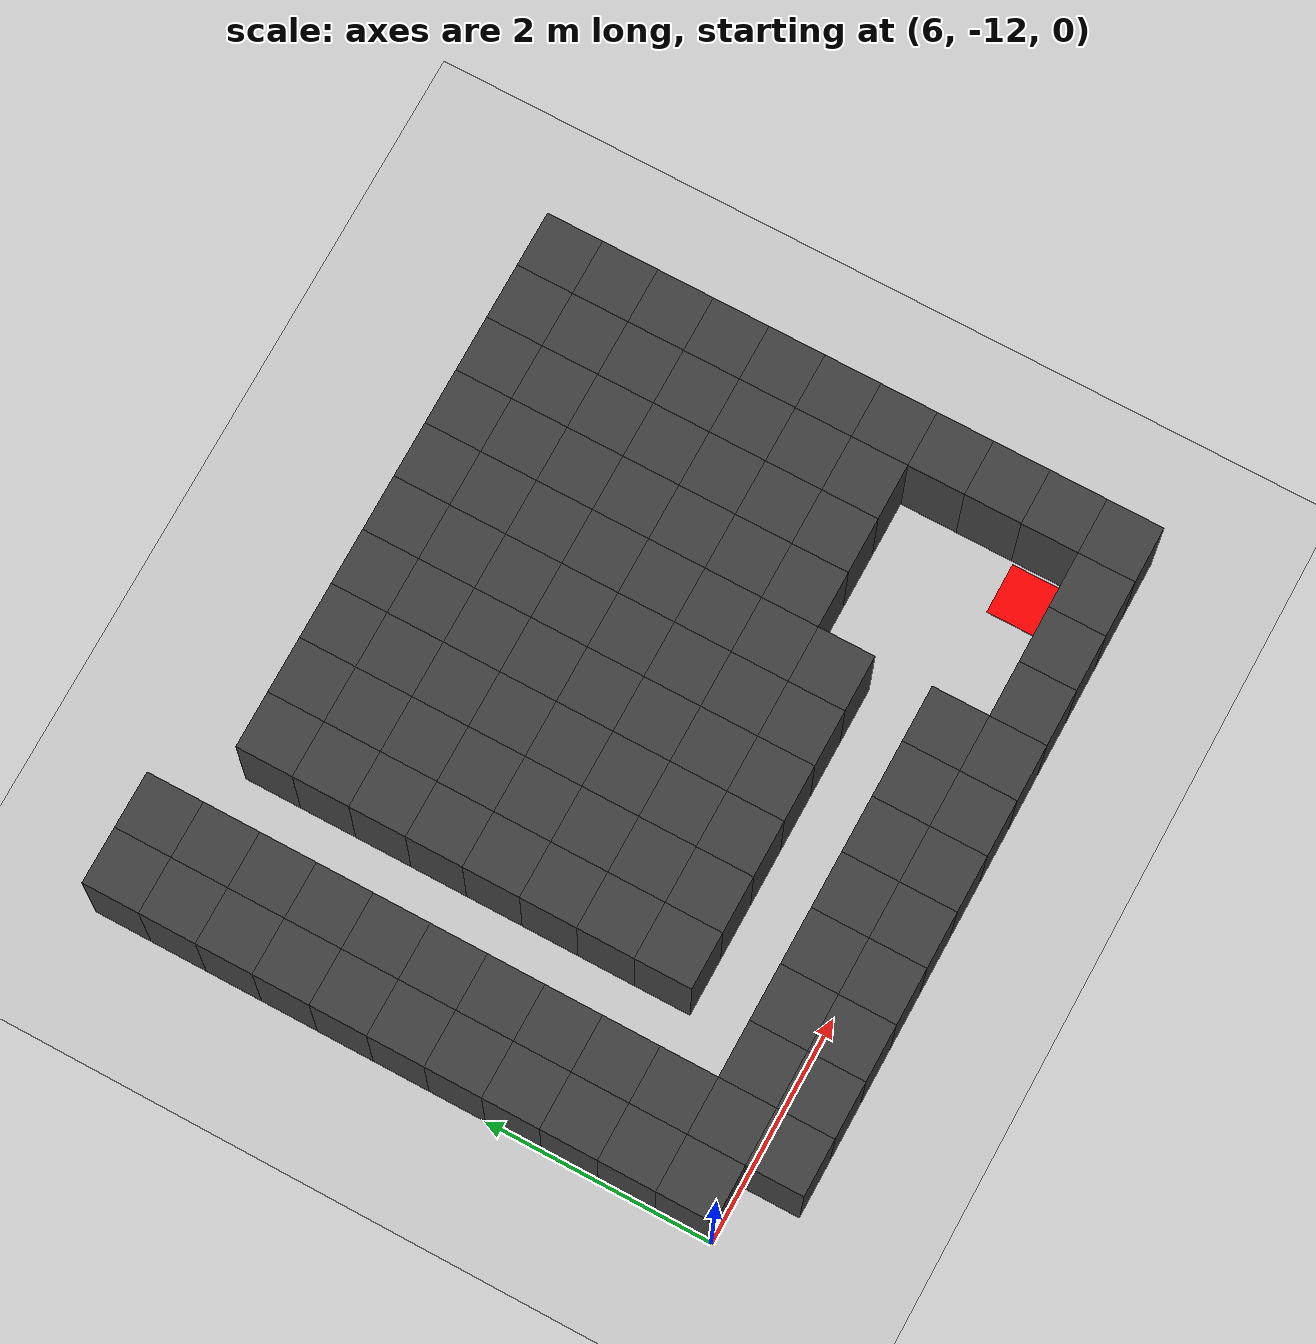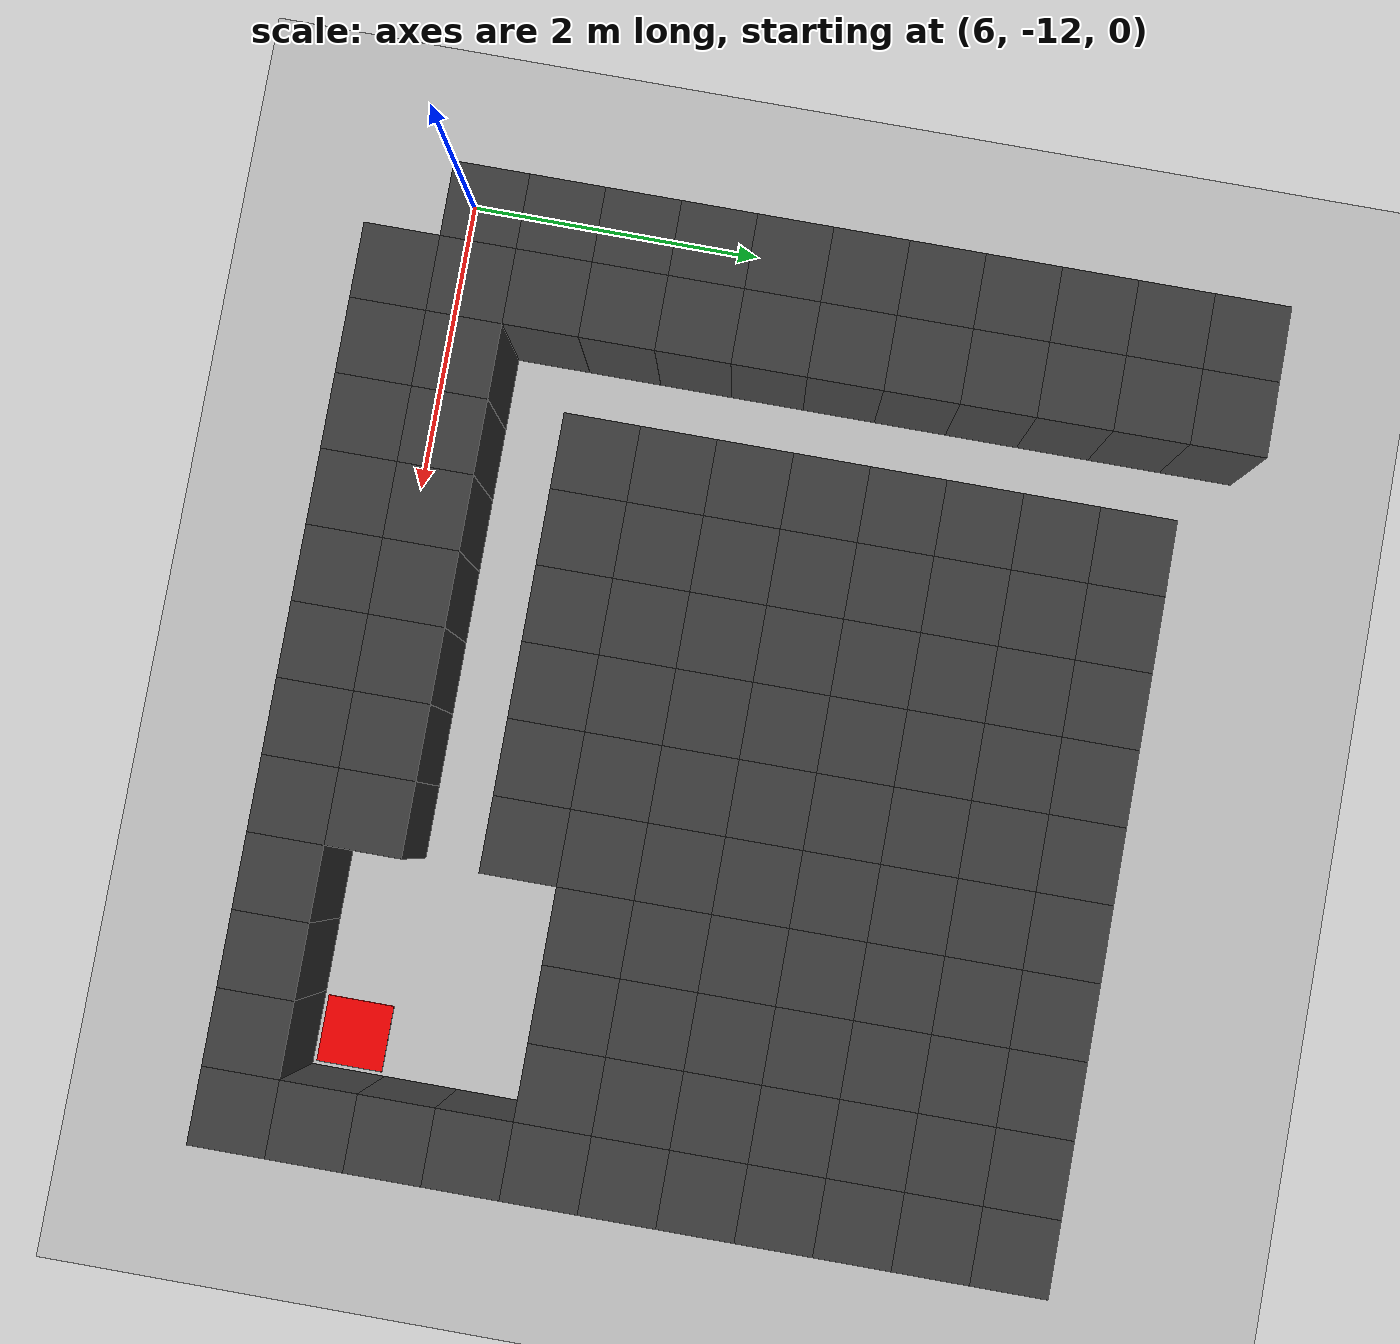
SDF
<sdf version="1.7">
 <world name="map_14888">
  <model name="ground_plane">
   <static>true</static>
   <link name="link">
    <collision name="collision">
     <geometry><plane><normal>0 0 1</normal><size>200 200</size></plane></geometry>
    </collision>
    <visual name="visual">
     <geometry><plane><normal>0 0 1</normal><size>200 200</size></plane></geometry>
     <material><ambient>0.8 0.8 0.8 1</ambient><diffuse>0.8 0.8 0.8 1</diffuse></material>
    </visual>
   </link>
  </model>
  <model name="maze_environment">
   <static>true</static>
   <link name="wall_1394">
    <pose>6.250 -6.750 0.500 0 0 0</pose>
    <collision name="col"><geometry><box><size>0.5 0.5 1.0</size></box></geometry></collision>
    <visual name="vis">
     <geometry><box><size>0.5 0.5 1.0</size></box></geometry>
     <material><ambient>0.15 0.15 0.15 1</ambient><diffuse>0.25 0.25 0.25 1</diffuse></material>
    </visual>
   </link>
   <link name="wall_1395">
    <pose>6.750 -6.750 0.500 0 0 0</pose>
    <collision name="col"><geometry><box><size>0.5 0.5 1.0</size></box></geometry></collision>
    <visual name="vis">
     <geometry><box><size>0.5 0.5 1.0</size></box></geometry>
     <material><ambient>0.15 0.15 0.15 1</ambient><diffuse>0.25 0.25 0.25 1</diffuse></material>
    </visual>
   </link>
   <link name="wall_1424">
    <pose>6.250 -7.250 0.500 0 0 0</pose>
    <collision name="col"><geometry><box><size>0.5 0.5 1.0</size></box></geometry></collision>
    <visual name="vis">
     <geometry><box><size>0.5 0.5 1.0</size></box></geometry>
     <material><ambient>0.15 0.15 0.15 1</ambient><diffuse>0.25 0.25 0.25 1</diffuse></material>
    </visual>
   </link>
   <link name="wall_1425">
    <pose>6.750 -7.250 0.500 0 0 0</pose>
    <collision name="col"><geometry><box><size>0.5 0.5 1.0</size></box></geometry></collision>
    <visual name="vis">
     <geometry><box><size>0.5 0.5 1.0</size></box></geometry>
     <material><ambient>0.15 0.15 0.15 1</ambient><diffuse>0.25 0.25 0.25 1</diffuse></material>
    </visual>
   </link>
   <link name="wall_1426">
    <pose>7.750 -7.250 0.500 0 0 0</pose>
    <collision name="col"><geometry><box><size>0.5 0.5 1.0</size></box></geometry></collision>
    <visual name="vis">
     <geometry><box><size>0.5 0.5 1.0</size></box></geometry>
     <material><ambient>0.15 0.15 0.15 1</ambient><diffuse>0.25 0.25 0.25 1</diffuse></material>
    </visual>
   </link>
   <link name="wall_1427">
    <pose>8.250 -7.250 0.500 0 0 0</pose>
    <collision name="col"><geometry><box><size>0.5 0.5 1.0</size></box></geometry></collision>
    <visual name="vis">
     <geometry><box><size>0.5 0.5 1.0</size></box></geometry>
     <material><ambient>0.15 0.15 0.15 1</ambient><diffuse>0.25 0.25 0.25 1</diffuse></material>
    </visual>
   </link>
   <link name="wall_1428">
    <pose>8.750 -7.250 0.500 0 0 0</pose>
    <collision name="col"><geometry><box><size>0.5 0.5 1.0</size></box></geometry></collision>
    <visual name="vis">
     <geometry><box><size>0.5 0.5 1.0</size></box></geometry>
     <material><ambient>0.15 0.15 0.15 1</ambient><diffuse>0.25 0.25 0.25 1</diffuse></material>
    </visual>
   </link>
   <link name="wall_1429">
    <pose>9.250 -7.250 0.500 0 0 0</pose>
    <collision name="col"><geometry><box><size>0.5 0.5 1.0</size></box></geometry></collision>
    <visual name="vis">
     <geometry><box><size>0.5 0.5 1.0</size></box></geometry>
     <material><ambient>0.15 0.15 0.15 1</ambient><diffuse>0.25 0.25 0.25 1</diffuse></material>
    </visual>
   </link>
   <link name="wall_1430">
    <pose>9.750 -7.250 0.500 0 0 0</pose>
    <collision name="col"><geometry><box><size>0.5 0.5 1.0</size></box></geometry></collision>
    <visual name="vis">
     <geometry><box><size>0.5 0.5 1.0</size></box></geometry>
     <material><ambient>0.15 0.15 0.15 1</ambient><diffuse>0.25 0.25 0.25 1</diffuse></material>
    </visual>
   </link>
   <link name="wall_1431">
    <pose>10.250 -7.250 0.500 0 0 0</pose>
    <collision name="col"><geometry><box><size>0.5 0.5 1.0</size></box></geometry></collision>
    <visual name="vis">
     <geometry><box><size>0.5 0.5 1.0</size></box></geometry>
     <material><ambient>0.15 0.15 0.15 1</ambient><diffuse>0.25 0.25 0.25 1</diffuse></material>
    </visual>
   </link>
   <link name="wall_1432">
    <pose>10.750 -7.250 0.500 0 0 0</pose>
    <collision name="col"><geometry><box><size>0.5 0.5 1.0</size></box></geometry></collision>
    <visual name="vis">
     <geometry><box><size>0.5 0.5 1.0</size></box></geometry>
     <material><ambient>0.15 0.15 0.15 1</ambient><diffuse>0.25 0.25 0.25 1</diffuse></material>
    </visual>
   </link>
   <link name="wall_1433">
    <pose>11.250 -7.250 0.500 0 0 0</pose>
    <collision name="col"><geometry><box><size>0.5 0.5 1.0</size></box></geometry></collision>
    <visual name="vis">
     <geometry><box><size>0.5 0.5 1.0</size></box></geometry>
     <material><ambient>0.15 0.15 0.15 1</ambient><diffuse>0.25 0.25 0.25 1</diffuse></material>
    </visual>
   </link>
   <link name="wall_1434">
    <pose>11.750 -7.250 0.500 0 0 0</pose>
    <collision name="col"><geometry><box><size>0.5 0.5 1.0</size></box></geometry></collision>
    <visual name="vis">
     <geometry><box><size>0.5 0.5 1.0</size></box></geometry>
     <material><ambient>0.15 0.15 0.15 1</ambient><diffuse>0.25 0.25 0.25 1</diffuse></material>
    </visual>
   </link>
   <link name="wall_1435">
    <pose>12.250 -7.250 0.500 0 0 0</pose>
    <collision name="col"><geometry><box><size>0.5 0.5 1.0</size></box></geometry></collision>
    <visual name="vis">
     <geometry><box><size>0.5 0.5 1.0</size></box></geometry>
     <material><ambient>0.15 0.15 0.15 1</ambient><diffuse>0.25 0.25 0.25 1</diffuse></material>
    </visual>
   </link>
   <link name="wall_1460">
    <pose>6.250 -7.750 0.500 0 0 0</pose>
    <collision name="col"><geometry><box><size>0.5 0.5 1.0</size></box></geometry></collision>
    <visual name="vis">
     <geometry><box><size>0.5 0.5 1.0</size></box></geometry>
     <material><ambient>0.15 0.15 0.15 1</ambient><diffuse>0.25 0.25 0.25 1</diffuse></material>
    </visual>
   </link>
   <link name="wall_1461">
    <pose>6.750 -7.750 0.500 0 0 0</pose>
    <collision name="col"><geometry><box><size>0.5 0.5 1.0</size></box></geometry></collision>
    <visual name="vis">
     <geometry><box><size>0.5 0.5 1.0</size></box></geometry>
     <material><ambient>0.15 0.15 0.15 1</ambient><diffuse>0.25 0.25 0.25 1</diffuse></material>
    </visual>
   </link>
   <link name="wall_1462">
    <pose>7.750 -7.750 0.500 0 0 0</pose>
    <collision name="col"><geometry><box><size>0.5 0.5 1.0</size></box></geometry></collision>
    <visual name="vis">
     <geometry><box><size>0.5 0.5 1.0</size></box></geometry>
     <material><ambient>0.15 0.15 0.15 1</ambient><diffuse>0.25 0.25 0.25 1</diffuse></material>
    </visual>
   </link>
   <link name="wall_1463">
    <pose>8.250 -7.750 0.500 0 0 0</pose>
    <collision name="col"><geometry><box><size>0.5 0.5 1.0</size></box></geometry></collision>
    <visual name="vis">
     <geometry><box><size>0.5 0.5 1.0</size></box></geometry>
     <material><ambient>0.15 0.15 0.15 1</ambient><diffuse>0.25 0.25 0.25 1</diffuse></material>
    </visual>
   </link>
   <link name="wall_1464">
    <pose>8.750 -7.750 0.500 0 0 0</pose>
    <collision name="col"><geometry><box><size>0.5 0.5 1.0</size></box></geometry></collision>
    <visual name="vis">
     <geometry><box><size>0.5 0.5 1.0</size></box></geometry>
     <material><ambient>0.15 0.15 0.15 1</ambient><diffuse>0.25 0.25 0.25 1</diffuse></material>
    </visual>
   </link>
   <link name="wall_1465">
    <pose>9.250 -7.750 0.500 0 0 0</pose>
    <collision name="col"><geometry><box><size>0.5 0.5 1.0</size></box></geometry></collision>
    <visual name="vis">
     <geometry><box><size>0.5 0.5 1.0</size></box></geometry>
     <material><ambient>0.15 0.15 0.15 1</ambient><diffuse>0.25 0.25 0.25 1</diffuse></material>
    </visual>
   </link>
   <link name="wall_1466">
    <pose>9.750 -7.750 0.500 0 0 0</pose>
    <collision name="col"><geometry><box><size>0.5 0.5 1.0</size></box></geometry></collision>
    <visual name="vis">
     <geometry><box><size>0.5 0.5 1.0</size></box></geometry>
     <material><ambient>0.15 0.15 0.15 1</ambient><diffuse>0.25 0.25 0.25 1</diffuse></material>
    </visual>
   </link>
   <link name="wall_1467">
    <pose>10.250 -7.750 0.500 0 0 0</pose>
    <collision name="col"><geometry><box><size>0.5 0.5 1.0</size></box></geometry></collision>
    <visual name="vis">
     <geometry><box><size>0.5 0.5 1.0</size></box></geometry>
     <material><ambient>0.15 0.15 0.15 1</ambient><diffuse>0.25 0.25 0.25 1</diffuse></material>
    </visual>
   </link>
   <link name="wall_1468">
    <pose>10.750 -7.750 0.500 0 0 0</pose>
    <collision name="col"><geometry><box><size>0.5 0.5 1.0</size></box></geometry></collision>
    <visual name="vis">
     <geometry><box><size>0.5 0.5 1.0</size></box></geometry>
     <material><ambient>0.15 0.15 0.15 1</ambient><diffuse>0.25 0.25 0.25 1</diffuse></material>
    </visual>
   </link>
   <link name="wall_1469">
    <pose>11.250 -7.750 0.500 0 0 0</pose>
    <collision name="col"><geometry><box><size>0.5 0.5 1.0</size></box></geometry></collision>
    <visual name="vis">
     <geometry><box><size>0.5 0.5 1.0</size></box></geometry>
     <material><ambient>0.15 0.15 0.15 1</ambient><diffuse>0.25 0.25 0.25 1</diffuse></material>
    </visual>
   </link>
   <link name="wall_1470">
    <pose>11.750 -7.750 0.500 0 0 0</pose>
    <collision name="col"><geometry><box><size>0.5 0.5 1.0</size></box></geometry></collision>
    <visual name="vis">
     <geometry><box><size>0.5 0.5 1.0</size></box></geometry>
     <material><ambient>0.15 0.15 0.15 1</ambient><diffuse>0.25 0.25 0.25 1</diffuse></material>
    </visual>
   </link>
   <link name="wall_1471">
    <pose>12.250 -7.750 0.500 0 0 0</pose>
    <collision name="col"><geometry><box><size>0.5 0.5 1.0</size></box></geometry></collision>
    <visual name="vis">
     <geometry><box><size>0.5 0.5 1.0</size></box></geometry>
     <material><ambient>0.15 0.15 0.15 1</ambient><diffuse>0.25 0.25 0.25 1</diffuse></material>
    </visual>
   </link>
   <link name="wall_1493">
    <pose>6.250 -8.250 0.500 0 0 0</pose>
    <collision name="col"><geometry><box><size>0.5 0.5 1.0</size></box></geometry></collision>
    <visual name="vis">
     <geometry><box><size>0.5 0.5 1.0</size></box></geometry>
     <material><ambient>0.15 0.15 0.15 1</ambient><diffuse>0.25 0.25 0.25 1</diffuse></material>
    </visual>
   </link>
   <link name="wall_1494">
    <pose>6.750 -8.250 0.500 0 0 0</pose>
    <collision name="col"><geometry><box><size>0.5 0.5 1.0</size></box></geometry></collision>
    <visual name="vis">
     <geometry><box><size>0.5 0.5 1.0</size></box></geometry>
     <material><ambient>0.15 0.15 0.15 1</ambient><diffuse>0.25 0.25 0.25 1</diffuse></material>
    </visual>
   </link>
   <link name="wall_1495">
    <pose>7.750 -8.250 0.500 0 0 0</pose>
    <collision name="col"><geometry><box><size>0.5 0.5 1.0</size></box></geometry></collision>
    <visual name="vis">
     <geometry><box><size>0.5 0.5 1.0</size></box></geometry>
     <material><ambient>0.15 0.15 0.15 1</ambient><diffuse>0.25 0.25 0.25 1</diffuse></material>
    </visual>
   </link>
   <link name="wall_1496">
    <pose>8.250 -8.250 0.500 0 0 0</pose>
    <collision name="col"><geometry><box><size>0.5 0.5 1.0</size></box></geometry></collision>
    <visual name="vis">
     <geometry><box><size>0.5 0.5 1.0</size></box></geometry>
     <material><ambient>0.15 0.15 0.15 1</ambient><diffuse>0.25 0.25 0.25 1</diffuse></material>
    </visual>
   </link>
   <link name="wall_1497">
    <pose>8.750 -8.250 0.500 0 0 0</pose>
    <collision name="col"><geometry><box><size>0.5 0.5 1.0</size></box></geometry></collision>
    <visual name="vis">
     <geometry><box><size>0.5 0.5 1.0</size></box></geometry>
     <material><ambient>0.15 0.15 0.15 1</ambient><diffuse>0.25 0.25 0.25 1</diffuse></material>
    </visual>
   </link>
   <link name="wall_1498">
    <pose>9.250 -8.250 0.500 0 0 0</pose>
    <collision name="col"><geometry><box><size>0.5 0.5 1.0</size></box></geometry></collision>
    <visual name="vis">
     <geometry><box><size>0.5 0.5 1.0</size></box></geometry>
     <material><ambient>0.15 0.15 0.15 1</ambient><diffuse>0.25 0.25 0.25 1</diffuse></material>
    </visual>
   </link>
   <link name="wall_1499">
    <pose>9.750 -8.250 0.500 0 0 0</pose>
    <collision name="col"><geometry><box><size>0.5 0.5 1.0</size></box></geometry></collision>
    <visual name="vis">
     <geometry><box><size>0.5 0.5 1.0</size></box></geometry>
     <material><ambient>0.15 0.15 0.15 1</ambient><diffuse>0.25 0.25 0.25 1</diffuse></material>
    </visual>
   </link>
   <link name="wall_1500">
    <pose>10.250 -8.250 0.500 0 0 0</pose>
    <collision name="col"><geometry><box><size>0.5 0.5 1.0</size></box></geometry></collision>
    <visual name="vis">
     <geometry><box><size>0.5 0.5 1.0</size></box></geometry>
     <material><ambient>0.15 0.15 0.15 1</ambient><diffuse>0.25 0.25 0.25 1</diffuse></material>
    </visual>
   </link>
   <link name="wall_1501">
    <pose>10.750 -8.250 0.500 0 0 0</pose>
    <collision name="col"><geometry><box><size>0.5 0.5 1.0</size></box></geometry></collision>
    <visual name="vis">
     <geometry><box><size>0.5 0.5 1.0</size></box></geometry>
     <material><ambient>0.15 0.15 0.15 1</ambient><diffuse>0.25 0.25 0.25 1</diffuse></material>
    </visual>
   </link>
   <link name="wall_1502">
    <pose>11.250 -8.250 0.500 0 0 0</pose>
    <collision name="col"><geometry><box><size>0.5 0.5 1.0</size></box></geometry></collision>
    <visual name="vis">
     <geometry><box><size>0.5 0.5 1.0</size></box></geometry>
     <material><ambient>0.15 0.15 0.15 1</ambient><diffuse>0.25 0.25 0.25 1</diffuse></material>
    </visual>
   </link>
   <link name="wall_1503">
    <pose>11.750 -8.250 0.500 0 0 0</pose>
    <collision name="col"><geometry><box><size>0.5 0.5 1.0</size></box></geometry></collision>
    <visual name="vis">
     <geometry><box><size>0.5 0.5 1.0</size></box></geometry>
     <material><ambient>0.15 0.15 0.15 1</ambient><diffuse>0.25 0.25 0.25 1</diffuse></material>
    </visual>
   </link>
   <link name="wall_1504">
    <pose>12.250 -8.250 0.500 0 0 0</pose>
    <collision name="col"><geometry><box><size>0.5 0.5 1.0</size></box></geometry></collision>
    <visual name="vis">
     <geometry><box><size>0.5 0.5 1.0</size></box></geometry>
     <material><ambient>0.15 0.15 0.15 1</ambient><diffuse>0.25 0.25 0.25 1</diffuse></material>
    </visual>
   </link>
   <link name="wall_1526">
    <pose>6.250 -8.750 0.500 0 0 0</pose>
    <collision name="col"><geometry><box><size>0.5 0.5 1.0</size></box></geometry></collision>
    <visual name="vis">
     <geometry><box><size>0.5 0.5 1.0</size></box></geometry>
     <material><ambient>0.15 0.15 0.15 1</ambient><diffuse>0.25 0.25 0.25 1</diffuse></material>
    </visual>
   </link>
   <link name="wall_1527">
    <pose>6.750 -8.750 0.500 0 0 0</pose>
    <collision name="col"><geometry><box><size>0.5 0.5 1.0</size></box></geometry></collision>
    <visual name="vis">
     <geometry><box><size>0.5 0.5 1.0</size></box></geometry>
     <material><ambient>0.15 0.15 0.15 1</ambient><diffuse>0.25 0.25 0.25 1</diffuse></material>
    </visual>
   </link>
   <link name="wall_1528">
    <pose>7.750 -8.750 0.500 0 0 0</pose>
    <collision name="col"><geometry><box><size>0.5 0.5 1.0</size></box></geometry></collision>
    <visual name="vis">
     <geometry><box><size>0.5 0.5 1.0</size></box></geometry>
     <material><ambient>0.15 0.15 0.15 1</ambient><diffuse>0.25 0.25 0.25 1</diffuse></material>
    </visual>
   </link>
   <link name="wall_1529">
    <pose>8.250 -8.750 0.500 0 0 0</pose>
    <collision name="col"><geometry><box><size>0.5 0.5 1.0</size></box></geometry></collision>
    <visual name="vis">
     <geometry><box><size>0.5 0.5 1.0</size></box></geometry>
     <material><ambient>0.15 0.15 0.15 1</ambient><diffuse>0.25 0.25 0.25 1</diffuse></material>
    </visual>
   </link>
   <link name="wall_1530">
    <pose>8.750 -8.750 0.500 0 0 0</pose>
    <collision name="col"><geometry><box><size>0.5 0.5 1.0</size></box></geometry></collision>
    <visual name="vis">
     <geometry><box><size>0.5 0.5 1.0</size></box></geometry>
     <material><ambient>0.15 0.15 0.15 1</ambient><diffuse>0.25 0.25 0.25 1</diffuse></material>
    </visual>
   </link>
   <link name="wall_1531">
    <pose>9.250 -8.750 0.500 0 0 0</pose>
    <collision name="col"><geometry><box><size>0.5 0.5 1.0</size></box></geometry></collision>
    <visual name="vis">
     <geometry><box><size>0.5 0.5 1.0</size></box></geometry>
     <material><ambient>0.15 0.15 0.15 1</ambient><diffuse>0.25 0.25 0.25 1</diffuse></material>
    </visual>
   </link>
   <link name="wall_1532">
    <pose>9.750 -8.750 0.500 0 0 0</pose>
    <collision name="col"><geometry><box><size>0.5 0.5 1.0</size></box></geometry></collision>
    <visual name="vis">
     <geometry><box><size>0.5 0.5 1.0</size></box></geometry>
     <material><ambient>0.15 0.15 0.15 1</ambient><diffuse>0.25 0.25 0.25 1</diffuse></material>
    </visual>
   </link>
   <link name="wall_1533">
    <pose>10.250 -8.750 0.500 0 0 0</pose>
    <collision name="col"><geometry><box><size>0.5 0.5 1.0</size></box></geometry></collision>
    <visual name="vis">
     <geometry><box><size>0.5 0.5 1.0</size></box></geometry>
     <material><ambient>0.15 0.15 0.15 1</ambient><diffuse>0.25 0.25 0.25 1</diffuse></material>
    </visual>
   </link>
   <link name="wall_1534">
    <pose>10.750 -8.750 0.500 0 0 0</pose>
    <collision name="col"><geometry><box><size>0.5 0.5 1.0</size></box></geometry></collision>
    <visual name="vis">
     <geometry><box><size>0.5 0.5 1.0</size></box></geometry>
     <material><ambient>0.15 0.15 0.15 1</ambient><diffuse>0.25 0.25 0.25 1</diffuse></material>
    </visual>
   </link>
   <link name="wall_1535">
    <pose>11.250 -8.750 0.500 0 0 0</pose>
    <collision name="col"><geometry><box><size>0.5 0.5 1.0</size></box></geometry></collision>
    <visual name="vis">
     <geometry><box><size>0.5 0.5 1.0</size></box></geometry>
     <material><ambient>0.15 0.15 0.15 1</ambient><diffuse>0.25 0.25 0.25 1</diffuse></material>
    </visual>
   </link>
   <link name="wall_1536">
    <pose>11.750 -8.750 0.500 0 0 0</pose>
    <collision name="col"><geometry><box><size>0.5 0.5 1.0</size></box></geometry></collision>
    <visual name="vis">
     <geometry><box><size>0.5 0.5 1.0</size></box></geometry>
     <material><ambient>0.15 0.15 0.15 1</ambient><diffuse>0.25 0.25 0.25 1</diffuse></material>
    </visual>
   </link>
   <link name="wall_1537">
    <pose>12.250 -8.750 0.500 0 0 0</pose>
    <collision name="col"><geometry><box><size>0.5 0.5 1.0</size></box></geometry></collision>
    <visual name="vis">
     <geometry><box><size>0.5 0.5 1.0</size></box></geometry>
     <material><ambient>0.15 0.15 0.15 1</ambient><diffuse>0.25 0.25 0.25 1</diffuse></material>
    </visual>
   </link>
   <link name="wall_1558">
    <pose>6.250 -9.250 0.500 0 0 0</pose>
    <collision name="col"><geometry><box><size>0.5 0.5 1.0</size></box></geometry></collision>
    <visual name="vis">
     <geometry><box><size>0.5 0.5 1.0</size></box></geometry>
     <material><ambient>0.15 0.15 0.15 1</ambient><diffuse>0.25 0.25 0.25 1</diffuse></material>
    </visual>
   </link>
   <link name="wall_1559">
    <pose>6.750 -9.250 0.500 0 0 0</pose>
    <collision name="col"><geometry><box><size>0.5 0.5 1.0</size></box></geometry></collision>
    <visual name="vis">
     <geometry><box><size>0.5 0.5 1.0</size></box></geometry>
     <material><ambient>0.15 0.15 0.15 1</ambient><diffuse>0.25 0.25 0.25 1</diffuse></material>
    </visual>
   </link>
   <link name="wall_1560">
    <pose>7.750 -9.250 0.500 0 0 0</pose>
    <collision name="col"><geometry><box><size>0.5 0.5 1.0</size></box></geometry></collision>
    <visual name="vis">
     <geometry><box><size>0.5 0.5 1.0</size></box></geometry>
     <material><ambient>0.15 0.15 0.15 1</ambient><diffuse>0.25 0.25 0.25 1</diffuse></material>
    </visual>
   </link>
   <link name="wall_1561">
    <pose>8.250 -9.250 0.500 0 0 0</pose>
    <collision name="col"><geometry><box><size>0.5 0.5 1.0</size></box></geometry></collision>
    <visual name="vis">
     <geometry><box><size>0.5 0.5 1.0</size></box></geometry>
     <material><ambient>0.15 0.15 0.15 1</ambient><diffuse>0.25 0.25 0.25 1</diffuse></material>
    </visual>
   </link>
   <link name="wall_1562">
    <pose>8.750 -9.250 0.500 0 0 0</pose>
    <collision name="col"><geometry><box><size>0.5 0.5 1.0</size></box></geometry></collision>
    <visual name="vis">
     <geometry><box><size>0.5 0.5 1.0</size></box></geometry>
     <material><ambient>0.15 0.15 0.15 1</ambient><diffuse>0.25 0.25 0.25 1</diffuse></material>
    </visual>
   </link>
   <link name="wall_1563">
    <pose>9.250 -9.250 0.500 0 0 0</pose>
    <collision name="col"><geometry><box><size>0.5 0.5 1.0</size></box></geometry></collision>
    <visual name="vis">
     <geometry><box><size>0.5 0.5 1.0</size></box></geometry>
     <material><ambient>0.15 0.15 0.15 1</ambient><diffuse>0.25 0.25 0.25 1</diffuse></material>
    </visual>
   </link>
   <link name="wall_1564">
    <pose>9.750 -9.250 0.500 0 0 0</pose>
    <collision name="col"><geometry><box><size>0.5 0.5 1.0</size></box></geometry></collision>
    <visual name="vis">
     <geometry><box><size>0.5 0.5 1.0</size></box></geometry>
     <material><ambient>0.15 0.15 0.15 1</ambient><diffuse>0.25 0.25 0.25 1</diffuse></material>
    </visual>
   </link>
   <link name="wall_1565">
    <pose>10.250 -9.250 0.500 0 0 0</pose>
    <collision name="col"><geometry><box><size>0.5 0.5 1.0</size></box></geometry></collision>
    <visual name="vis">
     <geometry><box><size>0.5 0.5 1.0</size></box></geometry>
     <material><ambient>0.15 0.15 0.15 1</ambient><diffuse>0.25 0.25 0.25 1</diffuse></material>
    </visual>
   </link>
   <link name="wall_1566">
    <pose>10.750 -9.250 0.500 0 0 0</pose>
    <collision name="col"><geometry><box><size>0.5 0.5 1.0</size></box></geometry></collision>
    <visual name="vis">
     <geometry><box><size>0.5 0.5 1.0</size></box></geometry>
     <material><ambient>0.15 0.15 0.15 1</ambient><diffuse>0.25 0.25 0.25 1</diffuse></material>
    </visual>
   </link>
   <link name="wall_1567">
    <pose>11.250 -9.250 0.500 0 0 0</pose>
    <collision name="col"><geometry><box><size>0.5 0.5 1.0</size></box></geometry></collision>
    <visual name="vis">
     <geometry><box><size>0.5 0.5 1.0</size></box></geometry>
     <material><ambient>0.15 0.15 0.15 1</ambient><diffuse>0.25 0.25 0.25 1</diffuse></material>
    </visual>
   </link>
   <link name="wall_1568">
    <pose>11.750 -9.250 0.500 0 0 0</pose>
    <collision name="col"><geometry><box><size>0.5 0.5 1.0</size></box></geometry></collision>
    <visual name="vis">
     <geometry><box><size>0.5 0.5 1.0</size></box></geometry>
     <material><ambient>0.15 0.15 0.15 1</ambient><diffuse>0.25 0.25 0.25 1</diffuse></material>
    </visual>
   </link>
   <link name="wall_1569">
    <pose>12.250 -9.250 0.500 0 0 0</pose>
    <collision name="col"><geometry><box><size>0.5 0.5 1.0</size></box></geometry></collision>
    <visual name="vis">
     <geometry><box><size>0.5 0.5 1.0</size></box></geometry>
     <material><ambient>0.15 0.15 0.15 1</ambient><diffuse>0.25 0.25 0.25 1</diffuse></material>
    </visual>
   </link>
   <link name="wall_1598">
    <pose>6.250 -9.750 0.500 0 0 0</pose>
    <collision name="col"><geometry><box><size>0.5 0.5 1.0</size></box></geometry></collision>
    <visual name="vis">
     <geometry><box><size>0.5 0.5 1.0</size></box></geometry>
     <material><ambient>0.15 0.15 0.15 1</ambient><diffuse>0.25 0.25 0.25 1</diffuse></material>
    </visual>
   </link>
   <link name="wall_1599">
    <pose>6.750 -9.750 0.500 0 0 0</pose>
    <collision name="col"><geometry><box><size>0.5 0.5 1.0</size></box></geometry></collision>
    <visual name="vis">
     <geometry><box><size>0.5 0.5 1.0</size></box></geometry>
     <material><ambient>0.15 0.15 0.15 1</ambient><diffuse>0.25 0.25 0.25 1</diffuse></material>
    </visual>
   </link>
   <link name="wall_1600">
    <pose>7.750 -9.750 0.500 0 0 0</pose>
    <collision name="col"><geometry><box><size>0.5 0.5 1.0</size></box></geometry></collision>
    <visual name="vis">
     <geometry><box><size>0.5 0.5 1.0</size></box></geometry>
     <material><ambient>0.15 0.15 0.15 1</ambient><diffuse>0.25 0.25 0.25 1</diffuse></material>
    </visual>
   </link>
   <link name="wall_1601">
    <pose>8.250 -9.750 0.500 0 0 0</pose>
    <collision name="col"><geometry><box><size>0.5 0.5 1.0</size></box></geometry></collision>
    <visual name="vis">
     <geometry><box><size>0.5 0.5 1.0</size></box></geometry>
     <material><ambient>0.15 0.15 0.15 1</ambient><diffuse>0.25 0.25 0.25 1</diffuse></material>
    </visual>
   </link>
   <link name="wall_1602">
    <pose>8.750 -9.750 0.500 0 0 0</pose>
    <collision name="col"><geometry><box><size>0.5 0.5 1.0</size></box></geometry></collision>
    <visual name="vis">
     <geometry><box><size>0.5 0.5 1.0</size></box></geometry>
     <material><ambient>0.15 0.15 0.15 1</ambient><diffuse>0.25 0.25 0.25 1</diffuse></material>
    </visual>
   </link>
   <link name="wall_1603">
    <pose>9.250 -9.750 0.500 0 0 0</pose>
    <collision name="col"><geometry><box><size>0.5 0.5 1.0</size></box></geometry></collision>
    <visual name="vis">
     <geometry><box><size>0.5 0.5 1.0</size></box></geometry>
     <material><ambient>0.15 0.15 0.15 1</ambient><diffuse>0.25 0.25 0.25 1</diffuse></material>
    </visual>
   </link>
   <link name="wall_1604">
    <pose>9.750 -9.750 0.500 0 0 0</pose>
    <collision name="col"><geometry><box><size>0.5 0.5 1.0</size></box></geometry></collision>
    <visual name="vis">
     <geometry><box><size>0.5 0.5 1.0</size></box></geometry>
     <material><ambient>0.15 0.15 0.15 1</ambient><diffuse>0.25 0.25 0.25 1</diffuse></material>
    </visual>
   </link>
   <link name="wall_1605">
    <pose>10.250 -9.750 0.500 0 0 0</pose>
    <collision name="col"><geometry><box><size>0.5 0.5 1.0</size></box></geometry></collision>
    <visual name="vis">
     <geometry><box><size>0.5 0.5 1.0</size></box></geometry>
     <material><ambient>0.15 0.15 0.15 1</ambient><diffuse>0.25 0.25 0.25 1</diffuse></material>
    </visual>
   </link>
   <link name="wall_1606">
    <pose>10.750 -9.750 0.500 0 0 0</pose>
    <collision name="col"><geometry><box><size>0.5 0.5 1.0</size></box></geometry></collision>
    <visual name="vis">
     <geometry><box><size>0.5 0.5 1.0</size></box></geometry>
     <material><ambient>0.15 0.15 0.15 1</ambient><diffuse>0.25 0.25 0.25 1</diffuse></material>
    </visual>
   </link>
   <link name="wall_1607">
    <pose>11.250 -9.750 0.500 0 0 0</pose>
    <collision name="col"><geometry><box><size>0.5 0.5 1.0</size></box></geometry></collision>
    <visual name="vis">
     <geometry><box><size>0.5 0.5 1.0</size></box></geometry>
     <material><ambient>0.15 0.15 0.15 1</ambient><diffuse>0.25 0.25 0.25 1</diffuse></material>
    </visual>
   </link>
   <link name="wall_1608">
    <pose>11.750 -9.750 0.500 0 0 0</pose>
    <collision name="col"><geometry><box><size>0.5 0.5 1.0</size></box></geometry></collision>
    <visual name="vis">
     <geometry><box><size>0.5 0.5 1.0</size></box></geometry>
     <material><ambient>0.15 0.15 0.15 1</ambient><diffuse>0.25 0.25 0.25 1</diffuse></material>
    </visual>
   </link>
   <link name="wall_1609">
    <pose>12.250 -9.750 0.500 0 0 0</pose>
    <collision name="col"><geometry><box><size>0.5 0.5 1.0</size></box></geometry></collision>
    <visual name="vis">
     <geometry><box><size>0.5 0.5 1.0</size></box></geometry>
     <material><ambient>0.15 0.15 0.15 1</ambient><diffuse>0.25 0.25 0.25 1</diffuse></material>
    </visual>
   </link>
   <link name="wall_1638">
    <pose>6.250 -10.250 0.500 0 0 0</pose>
    <collision name="col"><geometry><box><size>0.5 0.5 1.0</size></box></geometry></collision>
    <visual name="vis">
     <geometry><box><size>0.5 0.5 1.0</size></box></geometry>
     <material><ambient>0.15 0.15 0.15 1</ambient><diffuse>0.25 0.25 0.25 1</diffuse></material>
    </visual>
   </link>
   <link name="wall_1639">
    <pose>6.750 -10.250 0.500 0 0 0</pose>
    <collision name="col"><geometry><box><size>0.5 0.5 1.0</size></box></geometry></collision>
    <visual name="vis">
     <geometry><box><size>0.5 0.5 1.0</size></box></geometry>
     <material><ambient>0.15 0.15 0.15 1</ambient><diffuse>0.25 0.25 0.25 1</diffuse></material>
    </visual>
   </link>
   <link name="wall_1640">
    <pose>7.750 -10.250 0.500 0 0 0</pose>
    <collision name="col"><geometry><box><size>0.5 0.5 1.0</size></box></geometry></collision>
    <visual name="vis">
     <geometry><box><size>0.5 0.5 1.0</size></box></geometry>
     <material><ambient>0.15 0.15 0.15 1</ambient><diffuse>0.25 0.25 0.25 1</diffuse></material>
    </visual>
   </link>
   <link name="wall_1641">
    <pose>8.250 -10.250 0.500 0 0 0</pose>
    <collision name="col"><geometry><box><size>0.5 0.5 1.0</size></box></geometry></collision>
    <visual name="vis">
     <geometry><box><size>0.5 0.5 1.0</size></box></geometry>
     <material><ambient>0.15 0.15 0.15 1</ambient><diffuse>0.25 0.25 0.25 1</diffuse></material>
    </visual>
   </link>
   <link name="wall_1642">
    <pose>8.750 -10.250 0.500 0 0 0</pose>
    <collision name="col"><geometry><box><size>0.5 0.5 1.0</size></box></geometry></collision>
    <visual name="vis">
     <geometry><box><size>0.5 0.5 1.0</size></box></geometry>
     <material><ambient>0.15 0.15 0.15 1</ambient><diffuse>0.25 0.25 0.25 1</diffuse></material>
    </visual>
   </link>
   <link name="wall_1643">
    <pose>9.250 -10.250 0.500 0 0 0</pose>
    <collision name="col"><geometry><box><size>0.5 0.5 1.0</size></box></geometry></collision>
    <visual name="vis">
     <geometry><box><size>0.5 0.5 1.0</size></box></geometry>
     <material><ambient>0.15 0.15 0.15 1</ambient><diffuse>0.25 0.25 0.25 1</diffuse></material>
    </visual>
   </link>
   <link name="wall_1644">
    <pose>9.750 -10.250 0.500 0 0 0</pose>
    <collision name="col"><geometry><box><size>0.5 0.5 1.0</size></box></geometry></collision>
    <visual name="vis">
     <geometry><box><size>0.5 0.5 1.0</size></box></geometry>
     <material><ambient>0.15 0.15 0.15 1</ambient><diffuse>0.25 0.25 0.25 1</diffuse></material>
    </visual>
   </link>
   <link name="wall_1645">
    <pose>10.250 -10.250 0.500 0 0 0</pose>
    <collision name="col"><geometry><box><size>0.5 0.5 1.0</size></box></geometry></collision>
    <visual name="vis">
     <geometry><box><size>0.5 0.5 1.0</size></box></geometry>
     <material><ambient>0.15 0.15 0.15 1</ambient><diffuse>0.25 0.25 0.25 1</diffuse></material>
    </visual>
   </link>
   <link name="wall_1646">
    <pose>10.750 -10.250 0.500 0 0 0</pose>
    <collision name="col"><geometry><box><size>0.5 0.5 1.0</size></box></geometry></collision>
    <visual name="vis">
     <geometry><box><size>0.5 0.5 1.0</size></box></geometry>
     <material><ambient>0.15 0.15 0.15 1</ambient><diffuse>0.25 0.25 0.25 1</diffuse></material>
    </visual>
   </link>
   <link name="wall_1647">
    <pose>11.250 -10.250 0.500 0 0 0</pose>
    <collision name="col"><geometry><box><size>0.5 0.5 1.0</size></box></geometry></collision>
    <visual name="vis">
     <geometry><box><size>0.5 0.5 1.0</size></box></geometry>
     <material><ambient>0.15 0.15 0.15 1</ambient><diffuse>0.25 0.25 0.25 1</diffuse></material>
    </visual>
   </link>
   <link name="wall_1648">
    <pose>11.750 -10.250 0.500 0 0 0</pose>
    <collision name="col"><geometry><box><size>0.5 0.5 1.0</size></box></geometry></collision>
    <visual name="vis">
     <geometry><box><size>0.5 0.5 1.0</size></box></geometry>
     <material><ambient>0.15 0.15 0.15 1</ambient><diffuse>0.25 0.25 0.25 1</diffuse></material>
    </visual>
   </link>
   <link name="wall_1649">
    <pose>12.250 -10.250 0.500 0 0 0</pose>
    <collision name="col"><geometry><box><size>0.5 0.5 1.0</size></box></geometry></collision>
    <visual name="vis">
     <geometry><box><size>0.5 0.5 1.0</size></box></geometry>
     <material><ambient>0.15 0.15 0.15 1</ambient><diffuse>0.25 0.25 0.25 1</diffuse></material>
    </visual>
   </link>
   <link name="wall_1678">
    <pose>6.250 -10.750 0.500 0 0 0</pose>
    <collision name="col"><geometry><box><size>0.5 0.5 1.0</size></box></geometry></collision>
    <visual name="vis">
     <geometry><box><size>0.5 0.5 1.0</size></box></geometry>
     <material><ambient>0.15 0.15 0.15 1</ambient><diffuse>0.25 0.25 0.25 1</diffuse></material>
    </visual>
   </link>
   <link name="wall_1679">
    <pose>6.750 -10.750 0.500 0 0 0</pose>
    <collision name="col"><geometry><box><size>0.5 0.5 1.0</size></box></geometry></collision>
    <visual name="vis">
     <geometry><box><size>0.5 0.5 1.0</size></box></geometry>
     <material><ambient>0.15 0.15 0.15 1</ambient><diffuse>0.25 0.25 0.25 1</diffuse></material>
    </visual>
   </link>
   <link name="wall_1680">
    <pose>7.750 -10.750 0.500 0 0 0</pose>
    <collision name="col"><geometry><box><size>0.5 0.5 1.0</size></box></geometry></collision>
    <visual name="vis">
     <geometry><box><size>0.5 0.5 1.0</size></box></geometry>
     <material><ambient>0.15 0.15 0.15 1</ambient><diffuse>0.25 0.25 0.25 1</diffuse></material>
    </visual>
   </link>
   <link name="wall_1681">
    <pose>8.250 -10.750 0.500 0 0 0</pose>
    <collision name="col"><geometry><box><size>0.5 0.5 1.0</size></box></geometry></collision>
    <visual name="vis">
     <geometry><box><size>0.5 0.5 1.0</size></box></geometry>
     <material><ambient>0.15 0.15 0.15 1</ambient><diffuse>0.25 0.25 0.25 1</diffuse></material>
    </visual>
   </link>
   <link name="wall_1682">
    <pose>8.750 -10.750 0.500 0 0 0</pose>
    <collision name="col"><geometry><box><size>0.5 0.5 1.0</size></box></geometry></collision>
    <visual name="vis">
     <geometry><box><size>0.5 0.5 1.0</size></box></geometry>
     <material><ambient>0.15 0.15 0.15 1</ambient><diffuse>0.25 0.25 0.25 1</diffuse></material>
    </visual>
   </link>
   <link name="wall_1683">
    <pose>9.250 -10.750 0.500 0 0 0</pose>
    <collision name="col"><geometry><box><size>0.5 0.5 1.0</size></box></geometry></collision>
    <visual name="vis">
     <geometry><box><size>0.5 0.5 1.0</size></box></geometry>
     <material><ambient>0.15 0.15 0.15 1</ambient><diffuse>0.25 0.25 0.25 1</diffuse></material>
    </visual>
   </link>
   <link name="wall_1684">
    <pose>9.750 -10.750 0.500 0 0 0</pose>
    <collision name="col"><geometry><box><size>0.5 0.5 1.0</size></box></geometry></collision>
    <visual name="vis">
     <geometry><box><size>0.5 0.5 1.0</size></box></geometry>
     <material><ambient>0.15 0.15 0.15 1</ambient><diffuse>0.25 0.25 0.25 1</diffuse></material>
    </visual>
   </link>
   <link name="wall_1685">
    <pose>10.250 -10.750 0.500 0 0 0</pose>
    <collision name="col"><geometry><box><size>0.5 0.5 1.0</size></box></geometry></collision>
    <visual name="vis">
     <geometry><box><size>0.5 0.5 1.0</size></box></geometry>
     <material><ambient>0.15 0.15 0.15 1</ambient><diffuse>0.25 0.25 0.25 1</diffuse></material>
    </visual>
   </link>
   <link name="wall_1686">
    <pose>12.250 -10.750 0.500 0 0 0</pose>
    <collision name="col"><geometry><box><size>0.5 0.5 1.0</size></box></geometry></collision>
    <visual name="vis">
     <geometry><box><size>0.5 0.5 1.0</size></box></geometry>
     <material><ambient>0.15 0.15 0.15 1</ambient><diffuse>0.25 0.25 0.25 1</diffuse></material>
    </visual>
   </link>
   <link name="wall_1724">
    <pose>6.250 -11.250 0.500 0 0 0</pose>
    <collision name="col"><geometry><box><size>0.5 0.5 1.0</size></box></geometry></collision>
    <visual name="vis">
     <geometry><box><size>0.5 0.5 1.0</size></box></geometry>
     <material><ambient>0.15 0.15 0.15 1</ambient><diffuse>0.25 0.25 0.25 1</diffuse></material>
    </visual>
   </link>
   <link name="wall_1725">
    <pose>6.750 -11.250 0.500 0 0 0</pose>
    <collision name="col"><geometry><box><size>0.5 0.5 1.0</size></box></geometry></collision>
    <visual name="vis">
     <geometry><box><size>0.5 0.5 1.0</size></box></geometry>
     <material><ambient>0.15 0.15 0.15 1</ambient><diffuse>0.25 0.25 0.25 1</diffuse></material>
    </visual>
   </link>
   <link name="wall_1726">
    <pose>12.250 -11.250 0.500 0 0 0</pose>
    <collision name="col"><geometry><box><size>0.5 0.5 1.0</size></box></geometry></collision>
    <visual name="vis">
     <geometry><box><size>0.5 0.5 1.0</size></box></geometry>
     <material><ambient>0.15 0.15 0.15 1</ambient><diffuse>0.25 0.25 0.25 1</diffuse></material>
    </visual>
   </link>
   <link name="wall_1764">
    <pose>6.250 -11.750 0.500 0 0 0</pose>
    <collision name="col"><geometry><box><size>0.5 0.5 1.0</size></box></geometry></collision>
    <visual name="vis">
     <geometry><box><size>0.5 0.5 1.0</size></box></geometry>
     <material><ambient>0.15 0.15 0.15 1</ambient><diffuse>0.25 0.25 0.25 1</diffuse></material>
    </visual>
   </link>
   <link name="wall_1765">
    <pose>6.750 -11.750 0.500 0 0 0</pose>
    <collision name="col"><geometry><box><size>0.5 0.5 1.0</size></box></geometry></collision>
    <visual name="vis">
     <geometry><box><size>0.5 0.5 1.0</size></box></geometry>
     <material><ambient>0.15 0.15 0.15 1</ambient><diffuse>0.25 0.25 0.25 1</diffuse></material>
    </visual>
   </link>
   <link name="wall_1766">
    <pose>7.250 -11.750 0.500 0 0 0</pose>
    <collision name="col"><geometry><box><size>0.5 0.5 1.0</size></box></geometry></collision>
    <visual name="vis">
     <geometry><box><size>0.5 0.5 1.0</size></box></geometry>
     <material><ambient>0.15 0.15 0.15 1</ambient><diffuse>0.25 0.25 0.25 1</diffuse></material>
    </visual>
   </link>
   <link name="wall_1767">
    <pose>7.750 -11.750 0.500 0 0 0</pose>
    <collision name="col"><geometry><box><size>0.5 0.5 1.0</size></box></geometry></collision>
    <visual name="vis">
     <geometry><box><size>0.5 0.5 1.0</size></box></geometry>
     <material><ambient>0.15 0.15 0.15 1</ambient><diffuse>0.25 0.25 0.25 1</diffuse></material>
    </visual>
   </link>
   <link name="wall_1768">
    <pose>8.250 -11.750 0.500 0 0 0</pose>
    <collision name="col"><geometry><box><size>0.5 0.5 1.0</size></box></geometry></collision>
    <visual name="vis">
     <geometry><box><size>0.5 0.5 1.0</size></box></geometry>
     <material><ambient>0.15 0.15 0.15 1</ambient><diffuse>0.25 0.25 0.25 1</diffuse></material>
    </visual>
   </link>
   <link name="wall_1769">
    <pose>8.750 -11.750 0.500 0 0 0</pose>
    <collision name="col"><geometry><box><size>0.5 0.5 1.0</size></box></geometry></collision>
    <visual name="vis">
     <geometry><box><size>0.5 0.5 1.0</size></box></geometry>
     <material><ambient>0.15 0.15 0.15 1</ambient><diffuse>0.25 0.25 0.25 1</diffuse></material>
    </visual>
   </link>
   <link name="wall_1770">
    <pose>9.250 -11.750 0.500 0 0 0</pose>
    <collision name="col"><geometry><box><size>0.5 0.5 1.0</size></box></geometry></collision>
    <visual name="vis">
     <geometry><box><size>0.5 0.5 1.0</size></box></geometry>
     <material><ambient>0.15 0.15 0.15 1</ambient><diffuse>0.25 0.25 0.25 1</diffuse></material>
    </visual>
   </link>
   <link name="wall_1771">
    <pose>9.750 -11.750 0.500 0 0 0</pose>
    <collision name="col"><geometry><box><size>0.5 0.5 1.0</size></box></geometry></collision>
    <visual name="vis">
     <geometry><box><size>0.5 0.5 1.0</size></box></geometry>
     <material><ambient>0.15 0.15 0.15 1</ambient><diffuse>0.25 0.25 0.25 1</diffuse></material>
    </visual>
   </link>
   <link name="wall_1772">
    <pose>10.250 -11.750 0.500 0 0 0</pose>
    <collision name="col"><geometry><box><size>0.5 0.5 1.0</size></box></geometry></collision>
    <visual name="vis">
     <geometry><box><size>0.5 0.5 1.0</size></box></geometry>
     <material><ambient>0.15 0.15 0.15 1</ambient><diffuse>0.25 0.25 0.25 1</diffuse></material>
    </visual>
   </link>
   <link name="wall_1773">
    <pose>12.250 -11.750 0.500 0 0 0</pose>
    <collision name="col"><geometry><box><size>0.5 0.5 1.0</size></box></geometry></collision>
    <visual name="vis">
     <geometry><box><size>0.5 0.5 1.0</size></box></geometry>
     <material><ambient>0.15 0.15 0.15 1</ambient><diffuse>0.25 0.25 0.25 1</diffuse></material>
    </visual>
   </link>
   <link name="wall_1812">
    <pose>6.750 -12.250 0.500 0 0 0</pose>
    <collision name="col"><geometry><box><size>0.5 0.5 1.0</size></box></geometry></collision>
    <visual name="vis">
     <geometry><box><size>0.5 0.5 1.0</size></box></geometry>
     <material><ambient>0.15 0.15 0.15 1</ambient><diffuse>0.25 0.25 0.25 1</diffuse></material>
    </visual>
   </link>
   <link name="wall_1813">
    <pose>7.250 -12.250 0.500 0 0 0</pose>
    <collision name="col"><geometry><box><size>0.5 0.5 1.0</size></box></geometry></collision>
    <visual name="vis">
     <geometry><box><size>0.5 0.5 1.0</size></box></geometry>
     <material><ambient>0.15 0.15 0.15 1</ambient><diffuse>0.25 0.25 0.25 1</diffuse></material>
    </visual>
   </link>
   <link name="wall_1814">
    <pose>7.750 -12.250 0.500 0 0 0</pose>
    <collision name="col"><geometry><box><size>0.5 0.5 1.0</size></box></geometry></collision>
    <visual name="vis">
     <geometry><box><size>0.5 0.5 1.0</size></box></geometry>
     <material><ambient>0.15 0.15 0.15 1</ambient><diffuse>0.25 0.25 0.25 1</diffuse></material>
    </visual>
   </link>
   <link name="wall_1815">
    <pose>8.250 -12.250 0.500 0 0 0</pose>
    <collision name="col"><geometry><box><size>0.5 0.5 1.0</size></box></geometry></collision>
    <visual name="vis">
     <geometry><box><size>0.5 0.5 1.0</size></box></geometry>
     <material><ambient>0.15 0.15 0.15 1</ambient><diffuse>0.25 0.25 0.25 1</diffuse></material>
    </visual>
   </link>
   <link name="wall_1816">
    <pose>8.750 -12.250 0.500 0 0 0</pose>
    <collision name="col"><geometry><box><size>0.5 0.5 1.0</size></box></geometry></collision>
    <visual name="vis">
     <geometry><box><size>0.5 0.5 1.0</size></box></geometry>
     <material><ambient>0.15 0.15 0.15 1</ambient><diffuse>0.25 0.25 0.25 1</diffuse></material>
    </visual>
   </link>
   <link name="wall_1817">
    <pose>9.250 -12.250 0.500 0 0 0</pose>
    <collision name="col"><geometry><box><size>0.5 0.5 1.0</size></box></geometry></collision>
    <visual name="vis">
     <geometry><box><size>0.5 0.5 1.0</size></box></geometry>
     <material><ambient>0.15 0.15 0.15 1</ambient><diffuse>0.25 0.25 0.25 1</diffuse></material>
    </visual>
   </link>
   <link name="wall_1818">
    <pose>9.750 -12.250 0.500 0 0 0</pose>
    <collision name="col"><geometry><box><size>0.5 0.5 1.0</size></box></geometry></collision>
    <visual name="vis">
     <geometry><box><size>0.5 0.5 1.0</size></box></geometry>
     <material><ambient>0.15 0.15 0.15 1</ambient><diffuse>0.25 0.25 0.25 1</diffuse></material>
    </visual>
   </link>
   <link name="wall_1819">
    <pose>10.250 -12.250 0.500 0 0 0</pose>
    <collision name="col"><geometry><box><size>0.5 0.5 1.0</size></box></geometry></collision>
    <visual name="vis">
     <geometry><box><size>0.5 0.5 1.0</size></box></geometry>
     <material><ambient>0.15 0.15 0.15 1</ambient><diffuse>0.25 0.25 0.25 1</diffuse></material>
    </visual>
   </link>
   <link name="wall_1820">
    <pose>10.750 -12.250 0.500 0 0 0</pose>
    <collision name="col"><geometry><box><size>0.5 0.5 1.0</size></box></geometry></collision>
    <visual name="vis">
     <geometry><box><size>0.5 0.5 1.0</size></box></geometry>
     <material><ambient>0.15 0.15 0.15 1</ambient><diffuse>0.25 0.25 0.25 1</diffuse></material>
    </visual>
   </link>
   <link name="wall_1821">
    <pose>11.250 -12.250 0.500 0 0 0</pose>
    <collision name="col"><geometry><box><size>0.5 0.5 1.0</size></box></geometry></collision>
    <visual name="vis">
     <geometry><box><size>0.5 0.5 1.0</size></box></geometry>
     <material><ambient>0.15 0.15 0.15 1</ambient><diffuse>0.25 0.25 0.25 1</diffuse></material>
    </visual>
   </link>
   <link name="wall_1822">
    <pose>11.750 -12.250 0.500 0 0 0</pose>
    <collision name="col"><geometry><box><size>0.5 0.5 1.0</size></box></geometry></collision>
    <visual name="vis">
     <geometry><box><size>0.5 0.5 1.0</size></box></geometry>
     <material><ambient>0.15 0.15 0.15 1</ambient><diffuse>0.25 0.25 0.25 1</diffuse></material>
    </visual>
   </link>
   <link name="wall_1823">
    <pose>12.250 -12.250 0.500 0 0 0</pose>
    <collision name="col"><geometry><box><size>0.5 0.5 1.0</size></box></geometry></collision>
    <visual name="vis">
     <geometry><box><size>0.5 0.5 1.0</size></box></geometry>
     <material><ambient>0.15 0.15 0.15 1</ambient><diffuse>0.25 0.25 0.25 1</diffuse></material>
    </visual>
   </link>
   <link name="goal_zone">
    <pose>11.750 -11.750 0.005 0 0 0</pose>
    <visual name="vis">
     <geometry><box><size>0.45 0.45 0.01</size></box></geometry>
     <material>
      <ambient>1.0 0.0 0.0 1</ambient>
      <diffuse>1.0 0.0 0.0 1</diffuse>
      <emissive>0.60 0.00 0.00 1</emissive>
     </material>
    </visual>
   </link>
  </model>
 </world>
</sdf>
